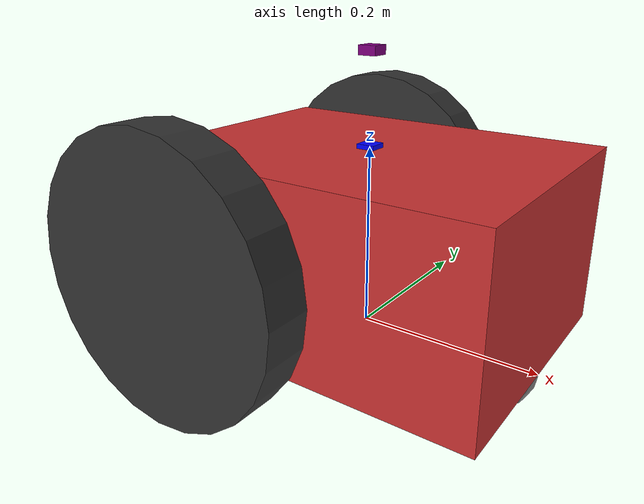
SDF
<?xml version="1.0"?>
<sdf version="1.6">
  <model name="diff_bot_sensors">
    <pose>0 0 0.1 0 0 0</pose>

    <link name="base_link">
      <inertial>
        <mass>5.0</mass>
        <inertia>
          <ixx>0.1</ixx>
          <ixy>0</ixy>
          <ixz>0</ixz>
          <iyy>0.1</iyy>
          <iyz>0</iyz>
          <izz>0.1</izz>
        </inertia>
      </inertial>

      <collision name="base_collision">
        <geometry>
          <box>
            <size>0.4 0.3 0.2</size>
          </box>
        </geometry>
      </collision>

      <visual name="base_visual">
        <geometry>
          <box>
            <size>0.4 0.3 0.2</size>
          </box>
        </geometry>
        <material>
          <ambient>0.8 0.2 0.2 1</ambient>
          <diffuse>0.8 0.2 0.2 1</diffuse>
          <specular>0.1 0.1 0.1 1</specular>
        </material>
      </visual>
    </link>

    <!-- Sensory links -->
    <link name="imu_link">
      <pose>0 0 0.1 0 0 0</pose>
      <visual name="imu_visual">
        <geometry>
          <box>
            <size>0.02 0.02 0.01</size>
          </box>
        </geometry>
        <material>
          <ambient>0 0 1 1</ambient>
          <diffuse>0 0 1 1</diffuse>
          <specular>0.1 0.1 0.1 1</specular>
        </material>
      </visual>
      <sensor name="imu_sensor" type="imu">
        <always_on>1</always_on>
        <update_rate>10</update_rate>
        <visualize>true</visualize>
        <topic>imu</topic>
      </sensor>
    </link>

    <joint name="imu_joint" type="fixed">
      <parent>base_link</parent>
      <child>imu_link</child>
    </joint>

    <link name="lidar_link">
      <pose>0 0 0.2 0 0 0</pose>
      <visual name="lidar_visual">
        <geometry>
          <box>
            <size>0.02 0.02 0.01</size>
          </box>
        </geometry>
        <material>
          <ambient>0.5 0 0.5 1</ambient>
          <diffuse>0.5 0 0.5 1</diffuse>
          <specular>0.1 0.1 0.1 1</specular>
        </material>
      </visual>
      <sensor name="gpu_lidar" type="gpu_lidar">
        <pose>0 0 0 0 0 0</pose>
        <topic>lidar</topic>
        <update_rate>10</update_rate>
        <gz_frame_id>lidar_link</gz_frame_id>
        <ray>
          <scan>
            <horizontal>
              <samples>360</samples>
              <resolution>1</resolution>
              <min_angle>0</min_angle>
              <max_angle>6.28</max_angle>
            </horizontal>
            <vertical>
              <samples>1</samples>
              <resolution>0.01</resolution>
              <min_angle>0</min_angle>
              <max_angle>0</max_angle>
            </vertical>
          </scan>
          <range>
            <min>0.08</min>
            <max>5.0</max>
            <resolution>0.01</resolution>
          </range>
        </ray>
        <always_on>1</always_on>
        <visualize>true</visualize>
      </sensor>
    </link>

    <joint name="lidar_joint" type="fixed">
      <parent>base_link</parent>
      <child>lidar_link</child>
    </joint>

    <!-- Left Wheel -->
    <link name="left_wheel">
      <pose>-0.1 0.2 0 1.5708 0 0</pose>
      <inertial>
        <mass>0.5</mass>
        <inertia>
          <ixx>0.02</ixx>
          <ixy>0</ixy>
          <ixz>0</ixz>
          <iyy>0.02</iyy>
          <iyz>0</iyz>
          <izz>0.02</izz>
        </inertia>
      </inertial>
      <collision name="left_wheel_collision">
        <geometry>
          <cylinder>
            <radius>0.15</radius>
            <length>0.05</length>
          </cylinder>
        </geometry>
      </collision>
      <visual name="left_wheel_visual">
        <geometry>
          <cylinder>
            <radius>0.15</radius>
            <length>0.05</length>
          </cylinder>
        </geometry>
        <material>
          <ambient>0.1 0.1 0.1 1</ambient>
          <diffuse>0.2 0.2 0.2 1</diffuse>
          <specular>0.1 0.1 0.1 1</specular>
        </material>
      </visual>
    </link>

    <!-- Right Wheel -->
    <link name="right_wheel">
      <pose>-0.1 -0.2 0 1.5708 0 0</pose>
      <inertial>
        <mass>0.5</mass>
        <inertia>
          <ixx>0.02</ixx>
          <ixy>0</ixy>
          <ixz>0</ixz>
          <iyy>0.02</iyy>
          <iyz>0</iyz>
          <izz>0.02</izz>
        </inertia>
      </inertial>
      <collision name="right_wheel_collision">
        <geometry>
          <cylinder>
            <radius>0.15</radius>
            <length>0.05</length>
          </cylinder>
        </geometry>
      </collision>
      <visual name="right_wheel_visual">
        <geometry>
          <cylinder>
            <radius>0.15</radius>
            <length>0.05</length>
          </cylinder>
        </geometry>
        <material>
          <ambient>0.1 0.1 0.1 1</ambient>
          <diffuse>0.2 0.2 0.2 1</diffuse>
          <specular>0.1 0.1 0.1 1</specular>
        </material>
      </visual>
    </link>

    <!-- Joints -->
    <joint name="left_wheel_joint" type="revolute">
      <parent>base_link</parent>
      <child>left_wheel</child>
      <axis>
        <xyz>0 0 1</xyz>
        <limit>
          <lower>-1e16</lower>
          <upper>1e16</upper>
        </limit>
      </axis>
    </joint>

    <joint name="right_wheel_joint" type="revolute">
      <parent>base_link</parent>
      <child>right_wheel</child>
      <axis>
        <xyz>0 0 1</xyz>
        <limit>
          <lower>-1e16</lower>
          <upper>1e16</upper>
        </limit>
      </axis>
    </joint>

    <!-- Caster Wheel -->
    <link name="caster_wheel">
      <pose>0.15 0 -0.1 0 0 0</pose>
      <inertial>
        <mass>0.1</mass>
        <inertia>
          <ixx>0.001</ixx>
          <ixy>0</ixy>
          <ixz>0</ixz>
          <iyy>0.001</iyy>
          <iyz>0</iyz>
          <izz>0.001</izz>
        </inertia>
      </inertial>
      <collision name="caster_wheel_collision">
        <geometry>
          <sphere>
            <radius>0.05</radius>
          </sphere>
        </geometry>
      </collision>
      <visual name="caster_wheel_visual">
        <geometry>
          <sphere>
            <radius>0.05</radius>
          </sphere>
        </geometry>
        <material>
          <ambient>0.3 0.3 0.3 1</ambient>
          <diffuse>0.5 0.5 0.5 1</diffuse>
          <specular>0.1 0.1 0.1 1</specular>
        </material>
      </visual>
    </link>

    <joint name="caster_wheel_joint" type="ball">
      <parent>base_link</parent>
      <child>caster_wheel</child>
    </joint>

    <!-- Plugin for controlling the robot -->
    <plugin filename="libignition-gazebo-diff-drive-system.so" name="ignition::gazebo::systems::DiffDrive">
      <left_joint>left_wheel_joint</left_joint>
      <right_joint>right_wheel_joint</right_joint>
      <wheel_separation>0.4</wheel_separation>
      <wheel_radius>0.15</wheel_radius>
      <odom_publish_frequency>30</odom_publish_frequency>
      <topic>cmd_vel</topic>
      <odom_topic>odom</odom_topic>
      <tf_topic>tf</tf_topic>
      <frame_id>odom</frame_id>
      <child_frame_id>base_link</child_frame_id>
      <robot_base_frame>base_link</robot_base_frame>
    </plugin>

    <!-- Joint states plugin -->
    <plugin filename="ignition-gazebo-joint-state-publisher-system" name="ignition::gazebo::systems::JointStatePublisher"/>

  </model>
</sdf>
